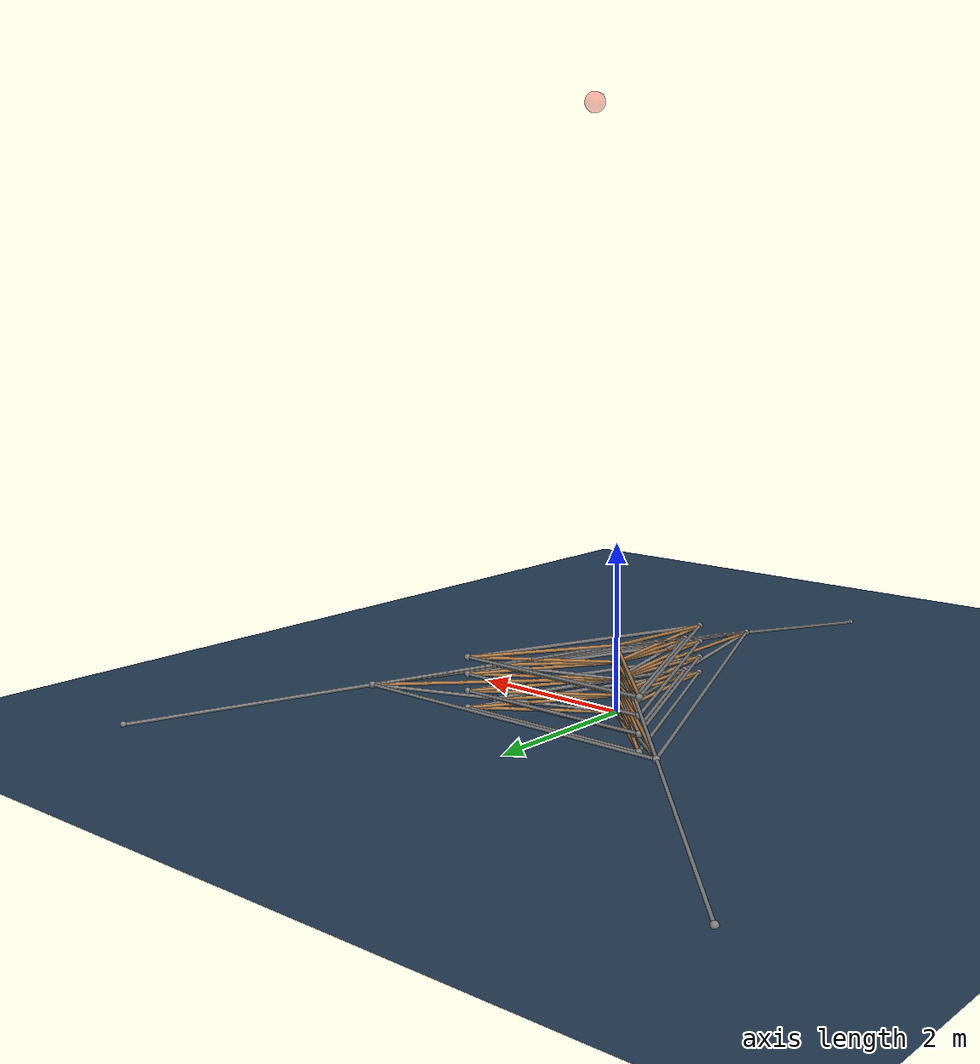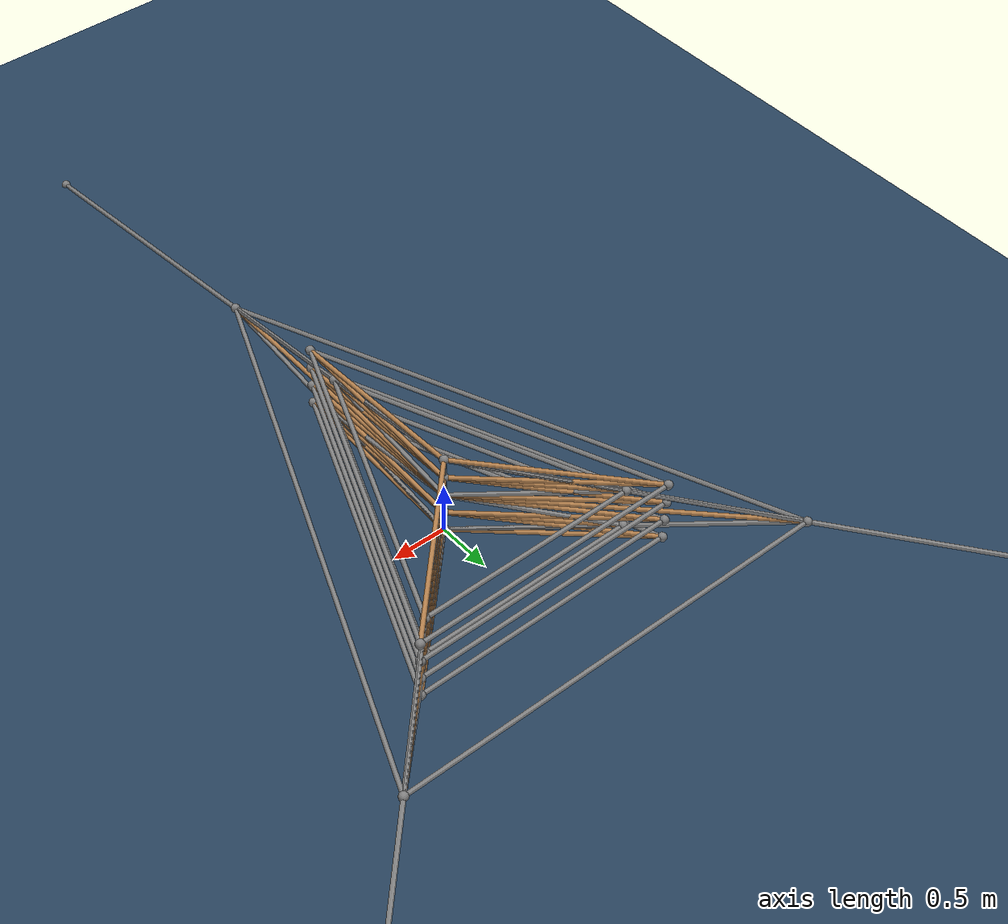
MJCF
<mujoco model="t2d1_3d——folded">
    <include file="./common/visual.xml"/>
    <include file="./common/skybox.xml"/>
    <include file="./common/materials.xml"/>

    <option timestep="0.01" iterations="50" solver="Newton" tolerance="1e-10" gravity="0 0 0" collision="predefined" viscosity="0.0" integrator="Euler"/>

    <size njmax="200" nconmax="100" nstack="80000"/>

    <visual>
        <rgba haze=".15 .25 .35 1"/>
    </visual>

    <default>
        <joint type="ball" pos="0 0 0" limited="false" damping="100"/>
        <motor ctrllimited="false" ctrlrange="-1 1" gear="1"/>
		<tendon stiffness="100" damping="5" width="0.02"/>
		<geom size="0.02" mass=".1" material="self"/>
		<site size="0.04"/>
    </default>

    <worldbody>
        <light directional="true" diffuse=".8 .8 .8" specular=".2 .2 .2" pos="0 0 5" dir="0 0 -1"/>

        <body pos="0 0 0">
            <geom name="lbar1" type="capsule" fromto="0 0 0  -1.224 1.224 .1"/>
			<site name="lb1e" pos="-1.224 1.224 .1"/>
			<joint name="lj1"/>
            <body name="lbar2" pos="-1.224 1.224 .1">
                <geom name="lbar2" type="capsule" fromto="0 0 0  1.224 -1.224 .1"/>
                <joint name="lj2"/>
                <site name="lb2e" pos="1.224 -1.224 .1"/>
				<body pos="1.224 -1.224 .1">
					<geom name="lbar3" type="capsule" fromto="0 0 0  -1 1 0"/>
					<joint name="lj3"/>
					<site name="lb3e" pos="-1 1 0"/>
				</body>
				<body pos="1.224 -1.224 .1">
					<geom name="mbar3" type="capsule" fromto="0 0 0  0 -1.414 0"/>
					<joint name="mj3"/>
					<site name="mb3e" pos="0 -1.414 0"/>
				</body>
                <body pos="1.224 -1.224 .1">
					<geom name="rbar3" type="capsule" fromto="0 0 0  1 1 0"/>
					<joint name="rj3"/>
					<site name="rb3e" pos="1 1 0"/>
				</body>
                <body pos="1.224 -1.224 .1">
					<geom name="lbar4" type="capsule" fromto="0 0 0  -1.224 1.224 .1"/>
					<joint name="lj4"/>
					<site name="lb4e" pos="-1.224 1.224 .1"/>
                    <body name="lbar5" pos="-1.224 1.224 .1">
                        <geom name="lbar5" type="capsule" fromto="0 0 0  1.224 -1.224 .1"/>
                        <joint name="lj5"/>
                        <site name="lb5e" pos="1.224 -1.224 .1"/>
						<body name="lbar6" pos="1.224 -1.224 .1">
							<geom name="lbar6" type="capsule" fromto="0 0 0  -2 2 0"/>
							<joint name="lj6"/>
							<site name="lb6e" pos="-2 2 0"/>
						</body>
						<body name="mbar6" pos="1.224 -1.224 .1">
							<geom name="mbar6" type="capsule" fromto="0 0 0  0 -2.828 0"/>
							<joint name="mj6"/>
							<site name="mb6e" pos="0 -2.828 0"/>
						</body>
						<body name="rbar6" pos="1.224 -1.224 .1">
							<geom name="rbar6" type="capsule" fromto="0 0 0  2 2 0"/>
							<joint name="rj6"/>
							<site name="rb6e" pos="2 2 0"/>
						</body>
						<body name="lbar7" pos="1.224 -1.224 .1">
							<geom name="lbar7" type="capsule" fromto="0 0 0  -1.224 1.224 .1"/>
							<joint name="lj7"/>
							<site name="lb7e" pos="-1.224 1.224 .1"/>
							<body name="lbar8" pos="-1.224 1.224 .1">
								<geom name="lbar8" type="capsule" fromto="0 0 0  1.224 -1.224 .1"/>
								<joint name="lj8"/>
								<site name="lb8e" pos="1.224 -1.224 .1"/>
								<body name="lbar9" pos="1.224 -1.224 .1">
									<geom name="lbar9" type="capsule" fromto="0 0 0  -1 1 0"/>
									<joint name="lj9"/>
									<site name="lb9e" pos="-1 1 0"/>
								</body>
								<body name="mbar9" pos="1.224 -1.224 .1">
									<geom name="mbar9" type="capsule" fromto="0 0 0  0 -1.414 0"/>
									<joint name="mj9"/>
									<site name="mb9e" pos="0 -1.414 0"/>
								</body>
								<body name="rbar9" pos="1.224 -1.224 .1">
									<geom name="rbar9" type="capsule" fromto="0 0 0  1 1 0"/>
									<joint name="rj9"/>
									<site name="rb9e" pos="1 1 0"/>
								</body>
								<body name="lbar10" pos="1.224 -1.224 .1">
									<geom name="lbar10" type="capsule" fromto="0 0 0  -1.224 1.224 .1"/>
									<joint name="lj10"/>
									<site name="lb10e" pos="-1.224 1.224 .1"/>
									<body name="lbar11" pos="-1.224 1.224 .1">
										<geom name="lbar11" type="capsule" fromto="0 0 0  1.224 -1.224 .1"/>
										<joint name="lj11"/>
										<site name="lb11e" pos="1.224 -1.224 .1"/>
									</body>
								</body>
							</body>
						</body>
                    </body>
				</body>
            </body>
        </body>

        <body pos="0 0 0">
            <geom name="mbar1" type="capsule" fromto="0 0 0  0 -1.732 .1" />
			<site name="mb1e" pos="0 -1.732 .1"/>
			<joint name="mj1"/>
            <body name="mbar2" pos="0 -1.732 .1">
                <geom name="mbar2" type="capsule" fromto="0 0 0  0 1.732 .1"/>
                <joint name="mj2"/>
                <body pos="0 1.732 .1">
					<geom name="mbar4" type="capsule" fromto="0 0 0  0 -1.732 .1"/>
					<joint name="mj4"/>
					<site name="mb4e" pos="0 -1.732 .1"/>
                    <body name="mbar5" pos="0 -1.732 .1">
                        <geom name="mbar5" type="capsule" fromto="0 0 0  0 1.732 .1"/>
                        <joint name="mj5"/>
						<body name="mbar7" pos="0 1.732 .1">
							<geom name="mbar7" type="capsule" fromto="0 0 0  0 -1.732 .1"/>
							<joint name="mj7"/>
							<site name="mb7e" pos="0 -1.732 .1"/>
							<body name="mbar8" pos="0 -1.732 .1">
								<geom name="mbar8" type="capsule" fromto="0 0 0  0 1.732 .1"/>
								<joint name="mj8"/>
								<body name="mbar10" pos="0 1.732 .1">
									<geom name="mbar10" type="capsule" fromto="0 0 0  0 -1.732 .1"/>
									<joint name="mj10"/>
									<site name="mb10e" pos="0 -1.732 .1"/>
									<body name="mbar11" pos="0 -1.732 .1">
										<geom name="mbar11" type="capsule" fromto="0 0 0  0 1.732 .1"/>
										<joint name="mj11"/>
									</body>
								</body>
							</body>
						</body>
                    </body>
				</body>
            </body>
        </body>

        <body pos="0 0 0">
            <geom name="rbar1" type="capsule" fromto="0 0 0  1.224 1.224 .1" />
			<site name="rb1e" pos="1.224 1.224 .1"/>
			<joint name="rj1"/>
            <body name="rbar2" pos="1.224 1.224 .1">
                <geom name="rbar2" type="capsule" fromto="0 0 0  -1.224 -1.224 .1"/>
                <joint name="rj2"/>
                <body pos="-1.224 -1.224 .1">
					<geom name="rbar4" type="capsule" fromto="0 0 0  1.224 1.224 .1"/>
                    <joint name="rj4"/>
					<site name="rb4e" pos="1.224 1.224 .1"/>
                    <body name="rbar5" pos="1.224 1.224 .1">
                        <geom name="rbar5" type="capsule" fromto="0 0 0  -1.224 -1.224 .1"/>
                        <joint name="rj5"/>
						<body name="rbar7" pos="-1.224 -1.224 .1">
							<geom name="rbar7" type="capsule" fromto="0 0 0  1.224 1.224 .1"/>
							<joint name="rj7"/>
							<site name="rb7e" pos="1.224 1.224 .1"/>
							<body name="rbar8" pos="1.224 1.224 .1">
								<geom name="rbar8" type="capsule" fromto="0 0 0  -1.224 -1.224 .1"/>
								<joint name="rj8"/>
								<body name="rbar10" pos="-1.224 -1.224 .1">
									<geom name="rbar10" type="capsule" fromto="0 0 0  1.224 1.224 .1"/>
									<joint name="rj10"/>
									<site name="rb10e" pos="1.224 1.224 .1"/>
									<body name="rbar11" pos="1.224 1.224 .1">
										<geom name="rbar11" type="capsule" fromto="0 0 0  -1.224 -1.224 .1"/>
										<joint name="rj11"/>
									</body>
								</body>
							</body>
						</body>
                    </body>
				</body>
            </body>
        </body>

		<body pos="0 0 0">
			<geom name="floor" pos="0 0 0" size="0 0 1" type="plane" material="grid"/>
			<site name="f0" pos="0 0 0"/>
			<site name="fl" pos="-4 4 0"/>
			<site name="fm" pos="0 -5.656 0"/>
            <site name="fr" pos="4 4 0"/>
			<site name="target" pos=".2 0.2 7" size="0.12" rgba="1 0 0 .3"/>
		</body>
    </worldbody>

	<equality>
		<connect active="true" name="c1" body1="lbar2" body2="rbar2" anchor="1.224 -1.224 .1"/>
        <connect active="true" name="c3" body1="lbar2" body2="mbar2" anchor="1.224 -1.224 .1"/>
        <connect active="true" name="c2" body1="lbar5" body2="rbar5" anchor="1.224 -1.224 .1"/>
        <connect active="true" name="c4" body1="lbar5" body2="mbar5" anchor="1.224 -1.224 .1"/>
		<connect active="true" name="c5" body1="lbar8" body2="mbar8" anchor="1.224 -1.224 .1"/>
        <connect active="true" name="c6" body1="lbar8" body2="rbar8" anchor="1.224 -1.224 .1"/>
		<connect active="true" name="c7" body1="lbar11" body2="rbar11" anchor="1.224 -1.224 .1"/>
        <connect active="true" name="c8" body1="lbar11" body2="mbar11" anchor="1.224 -1.224 .1"/>
	</equality>

    <contact>
		<pair geom1="floor" geom2="lbar1"/>
        <pair geom1="floor" geom2="lbar2"/>
        <pair geom1="floor" geom2="lbar3"/>
        <pair geom1="floor" geom2="lbar4"/>
		<pair geom1="floor" geom2="lbar5"/>
        <pair geom1="floor" geom2="lbar6"/>
		<pair geom1="floor" geom2="lbar7"/>
        <pair geom1="floor" geom2="lbar8"/>
        <pair geom1="floor" geom2="lbar9"/>
		<pair geom1="floor" geom2="lbar10"/>
        <pair geom1="floor" geom2="lbar11"/>

        <pair geom1="floor" geom2="rbar1"/>
        <pair geom1="floor" geom2="rbar2"/>
        <pair geom1="floor" geom2="rbar3"/>
        <pair geom1="floor" geom2="rbar4"/>
		<pair geom1="floor" geom2="rbar5"/>
        <pair geom1="floor" geom2="rbar6"/>
		<pair geom1="floor" geom2="rbar7"/>
        <pair geom1="floor" geom2="rbar8"/>
        <pair geom1="floor" geom2="rbar9"/>
		<pair geom1="floor" geom2="rbar10"/>
        <pair geom1="floor" geom2="rbar11"/>

        <pair geom1="floor" geom2="mbar1"/>
        <pair geom1="floor" geom2="mbar2"/>
        <pair geom1="floor" geom2="mbar3"/>
        <pair geom1="floor" geom2="mbar4"/>
		<pair geom1="floor" geom2="mbar5"/>
        <pair geom1="floor" geom2="mbar6"/>
		<pair geom1="floor" geom2="mbar7"/>
        <pair geom1="floor" geom2="mbar8"/>
        <pair geom1="floor" geom2="mbar9"/>
		<pair geom1="floor" geom2="mbar10"/>
        <pair geom1="floor" geom2="mbar11"/>
	</contact>

    <tendon>
        <spatial name="S1">
            <site site="f0"/>
            <site site="lb2e"/>
        </spatial>
		<spatial name="S2">
            <site site="rb1e"/>
            <site site="lb1e"/>
        </spatial>
        <spatial name="S3">
            <site site="mb1e"/>
            <site site="lb1e"/>
        </spatial>
        <spatial name="S4">
            <site site="mb1e"/>
            <site site="rb1e"/>
        </spatial>
		<spatial name="S5">
            <site site="lb2e"/>
            <site site="lb5e"/>
        </spatial>
		<spatial name="S6">
            <site site="rb4e"/>
            <site site="lb4e"/>
        </spatial>
        <spatial name="S7">
            <site site="mb4e"/>
            <site site="lb4e"/>
        </spatial>
        <spatial name="S8">
            <site site="mb4e"/>
            <site site="rb4e"/>
        </spatial>
        <spatial name="S9">
            <site site="f0"/>
            <site site="lb3e"/>
        </spatial>
        <spatial name="S10">
            <site site="f0"/>
            <site site="rb3e"/>
        </spatial>
        <spatial name="S11">
            <site site="f0"/>
            <site site="mb3e"/>
        </spatial>
        <spatial name="S12">
            <site site="lb5e"/>
            <site site="lb3e"/>
        </spatial>
        <spatial name="S13">
            <site site="lb5e"/>
            <site site="rb3e"/>
        </spatial>
        <spatial name="S14">
            <site site="lb5e"/>
            <site site="mb3e"/>
        </spatial>
        <spatial name="S15">
            <site site="lb3e"/>
            <site site="mb3e"/>
        </spatial>
        <spatial name="S16">
            <site site="lb3e"/>
            <site site="rb3e"/>
        </spatial>
        <spatial name="S17">
            <site site="rb3e"/>
            <site site="mb3e"/>
        </spatial>

		<spatial name="S18">
            <site site="lb6e"/>
            <site site="rb6e"/>
        </spatial>
        <spatial name="S19">
            <site site="lb6e"/>
            <site site="mb6e"/>
        </spatial>
        <spatial name="S20">
            <site site="rb6e"/>
            <site site="mb6e"/>
        </spatial>

		<spatial name="S21">
            <site site="lb6e"/>
            <site site="f0"/>
        </spatial>
        <spatial name="S22">
            <site site="mb6e"/>
            <site site="f0"/>
        </spatial>
        <spatial name="S23">
            <site site="rb6e"/>
            <site site="f0"/>
        </spatial>

		<spatial name="S24">
            <site site="lb6e"/>
            <site site="lb11e"/>
        </spatial>
        <spatial name="S25">
            <site site="mb6e"/>
            <site site="lb11e"/>
        </spatial>
        <spatial name="S26">
            <site site="rb6e"/>
            <site site="lb11e"/>
        </spatial>

		<spatial name="S27">
            <site site="lb5e"/>
            <site site="lb9e"/>
        </spatial>
        <spatial name="S28">
            <site site="lb5e"/>
            <site site="mb9e"/>
        </spatial>
        <spatial name="S29">
            <site site="lb5e"/>
            <site site="rb9e"/>
        </spatial>

		<spatial name="S30">
            <site site="lb7e"/>
            <site site="mb7e"/>
        </spatial>
        <spatial name="S31">
            <site site="lb7e"/>
            <site site="rb7e"/>
        </spatial>
        <spatial name="S32">
            <site site="rb7e"/>
            <site site="mb7e"/>
        </spatial>

		<spatial name="S33">
            <site site="lb9e"/>
            <site site="mb9e"/>
        </spatial>
        <spatial name="S34">
            <site site="lb9e"/>
            <site site="rb9e"/>
        </spatial>
        <spatial name="S35">
            <site site="rb9e"/>
            <site site="mb9e"/>
        </spatial>

		<spatial name="S36">
            <site site="lb9e"/>
            <site site="lb11e"/>
        </spatial>
        <spatial name="S37">
            <site site="mb9e"/>
            <site site="lb11e"/>
        </spatial>
        <spatial name="S38">
            <site site="rb9e"/>
            <site site="lb11e"/>
        </spatial>

		<spatial name="S39">
            <site site="lb5e"/>
            <site site="lb8e"/>
        </spatial>
        <spatial name="S40">
            <site site="lb8e"/>
            <site site="lb11e"/>
        </spatial>

		<spatial name="S41">
            <site site="lb10e"/>
            <site site="rb10e"/>
        </spatial>
        <spatial name="S42">
            <site site="lb10e"/>
            <site site="mb10e"/>
        </spatial>
        <spatial name="S43">
            <site site="rb10e"/>
            <site site="mb10e"/>
        </spatial>

        <spatial name="S44">
            <site site="fl"/>
            <site site="lb11e"/>
        </spatial>
        <spatial name="S45">
            <site site="fr"/>
            <site site="lb11e"/>
        </spatial>
        <spatial name="S46">
            <site site="fm"/>
            <site site="lb11e"/>
        </spatial>
    </tendon>

    <actuator>
        <motor tendon="S1"/>
        <motor tendon="S2"/>
		<motor tendon="S3"/>
        <motor tendon="S4"/>
        <motor tendon="S5"/>
        <motor tendon="S6"/>
		<motor tendon="S7"/>
        <motor tendon="S8"/>
        <motor tendon="S9"/>
        <motor tendon="S10"/>
        <motor tendon="S11"/>
        <motor tendon="S12"/>
		<motor tendon="S13"/>
        <motor tendon="S14"/>
        <motor tendon="S15"/>
        <motor tendon="S16"/>
		<motor tendon="S17"/>
        <motor tendon="S18"/>
        <motor tendon="S19"/>
        <motor tendon="S20"/>
		<motor tendon="S21"/>
        <motor tendon="S22"/>
		<motor tendon="S23"/>
        <motor tendon="S24"/>
        <motor tendon="S25"/>
        <motor tendon="S26"/>
		<motor tendon="S27"/>
        <motor tendon="S28"/>
        <motor tendon="S29"/>
        <motor tendon="S30"/>
        <motor tendon="S31"/>
        <motor tendon="S32"/>
		<motor tendon="S33"/>
        <motor tendon="S34"/>
        <motor tendon="S35"/>
        <motor tendon="S36"/>
		<motor tendon="S37"/>
        <motor tendon="S38"/>
        <motor tendon="S39"/>
        <motor tendon="S40"/>
		<motor tendon="S41"/>
        <motor tendon="S42"/>
        <motor tendon="S43"/>
		<motor tendon="S44"/>
        <motor tendon="S45"/>
        <motor tendon="S46"/>
    </actuator>

	<sensor>
		<framelinvel objtype="site" objname="lb1e"/>
		<framelinvel objtype="site" objname="lb2e"/>
		<framelinvel objtype="site" objname="lb3e"/>
		<framelinvel objtype="site" objname="lb4e"/>
		<framelinvel objtype="site" objname="lb5e"/>
		<framelinvel objtype="site" objname="mb3e"/>
        <framelinvel objtype="site" objname="rb3e"/>
        <framelinvel objtype="site" objname="mb1e"/>
		<framelinvel objtype="site" objname="mb4e"/>
		<framelinvel objtype="site" objname="rb1e"/>
		<framelinvel objtype="site" objname="rb4e"/>

		<framelinvel objtype="site" objname="lb6e"/>
		<framelinvel objtype="site" objname="mb6e"/>
        <framelinvel objtype="site" objname="rb6e"/>
		<framelinvel objtype="site" objname="lb7e"/>
		<framelinvel objtype="site" objname="mb7e"/>
        <framelinvel objtype="site" objname="rb7e"/>
		<framelinvel objtype="site" objname="lb8e"/>
		<framelinvel objtype="site" objname="lb11e"/>
        <framelinvel objtype="site" objname="lb9e"/>
		<framelinvel objtype="site" objname="mb9e"/>
        <framelinvel objtype="site" objname="rb9e"/>
		<framelinvel objtype="site" objname="lb10e"/>
		<framelinvel objtype="site" objname="mb10e"/>
        <framelinvel objtype="site" objname="rb10e"/>
	</sensor>
</mujoco>

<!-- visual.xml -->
<mujoco>
    <visual>
        <headlight ambient=".4 .4 .4" diffuse=".8 .8 .8" specular="0.1 0.1 0.1" />
        <map znear=".01" />
        <quality shadowsize="2048" />
    </visual>
</mujoco>

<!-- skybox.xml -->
<mujoco>
    <asset>
        <texture name="skybox" type="skybox" builtin="gradient" rgb1=".4 .6 .8" rgb2="0 0 0" width="800" height="800" mark="random" markrgb="1 1 1" />
    </asset>
</mujoco>

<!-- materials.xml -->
<!--
Common textures, colors and materials to be used throughout this suite. Some
materials such as xxx_highlight are activated on occurence of certain events,
for example receiving a positive reward.
-->
<mujoco>
    <asset>
        <texture name="grid" type="2d" builtin="checker" rgb1=".1 .2 .3" rgb2=".2 .3 .4" width="300" height="300" mark="edge" markrgb=".2 .3 .4" />
        <material name="grid" texture="grid" texrepeat="1 1" texuniform="true" reflectance=".2" />
        <material name="self" rgba=".7 .5 .3 1" />
        <material name="self_default" rgba=".7 .5 .3 1" />
        <material name="self_highlight" rgba="0 .5 .3 1" />
        <material name="effector" rgba=".7 .4 .2 1" />
        <material name="effector_default" rgba=".7 .4 .2 1" />
        <material name="effector_highlight" rgba="0 .5 .3 1" />
        <material name="decoration" rgba=".3 .5 .7 1" />
        <material name="eye" rgba="0 .2 1 1" />
        <material name="target" rgba=".6 .3 .3 1" />
        <material name="target_default" rgba=".6 .3 .3 1" />
        <material name="target_highlight" rgba=".6 .3 .3 .4" />
    </asset>
</mujoco>
